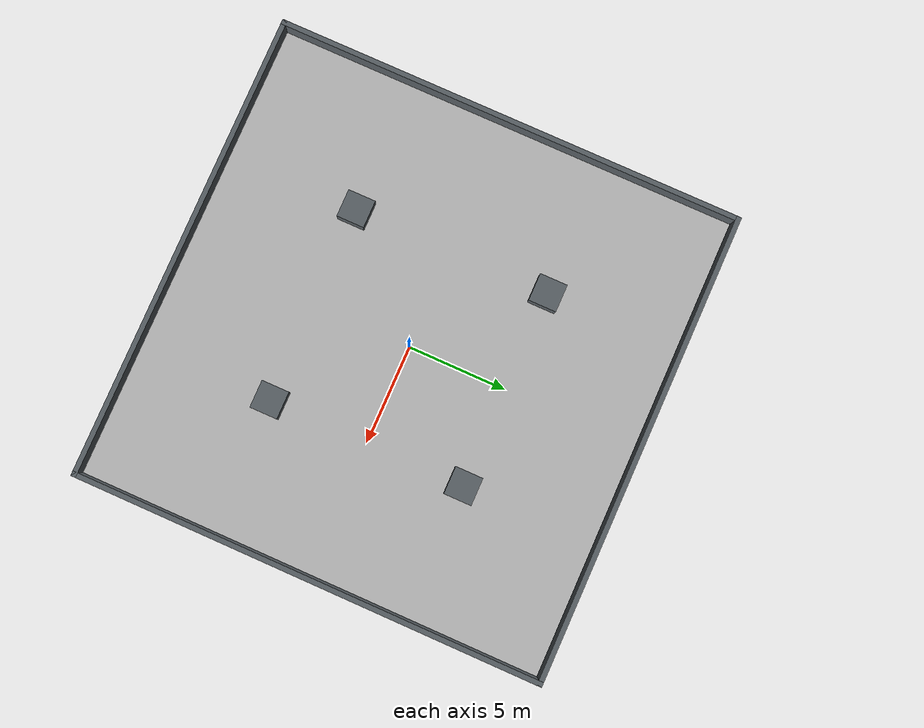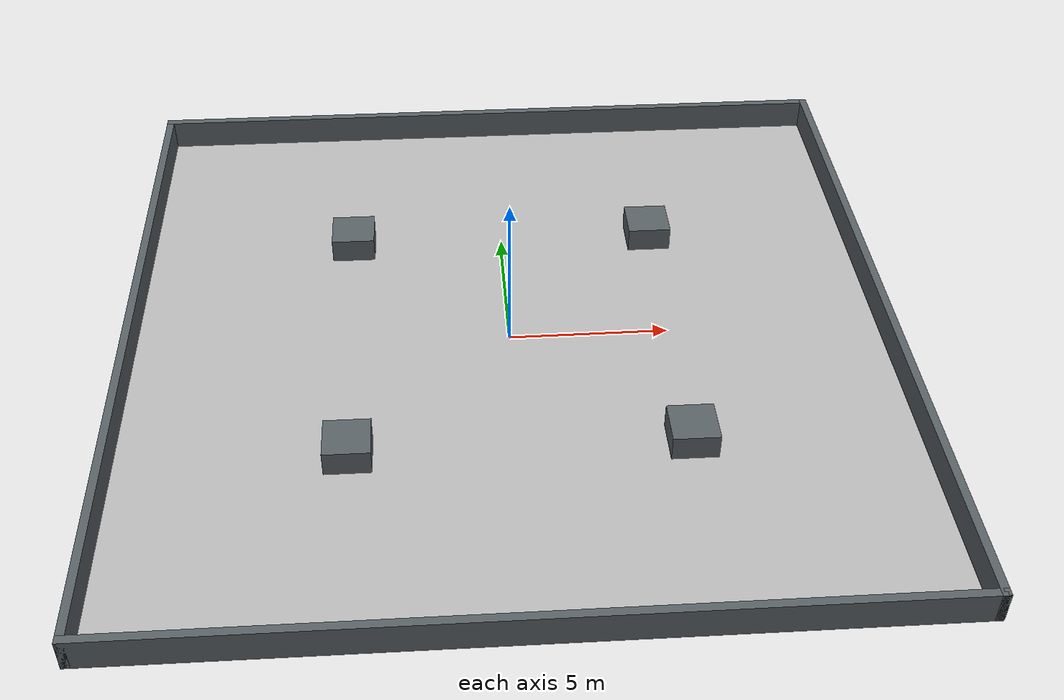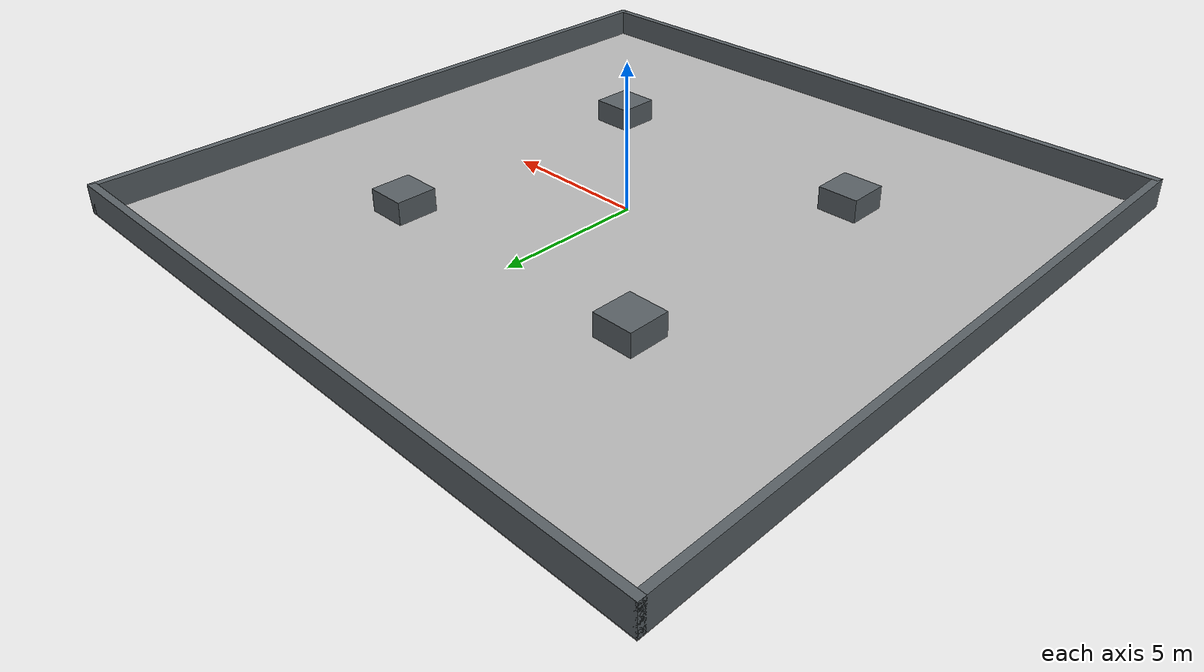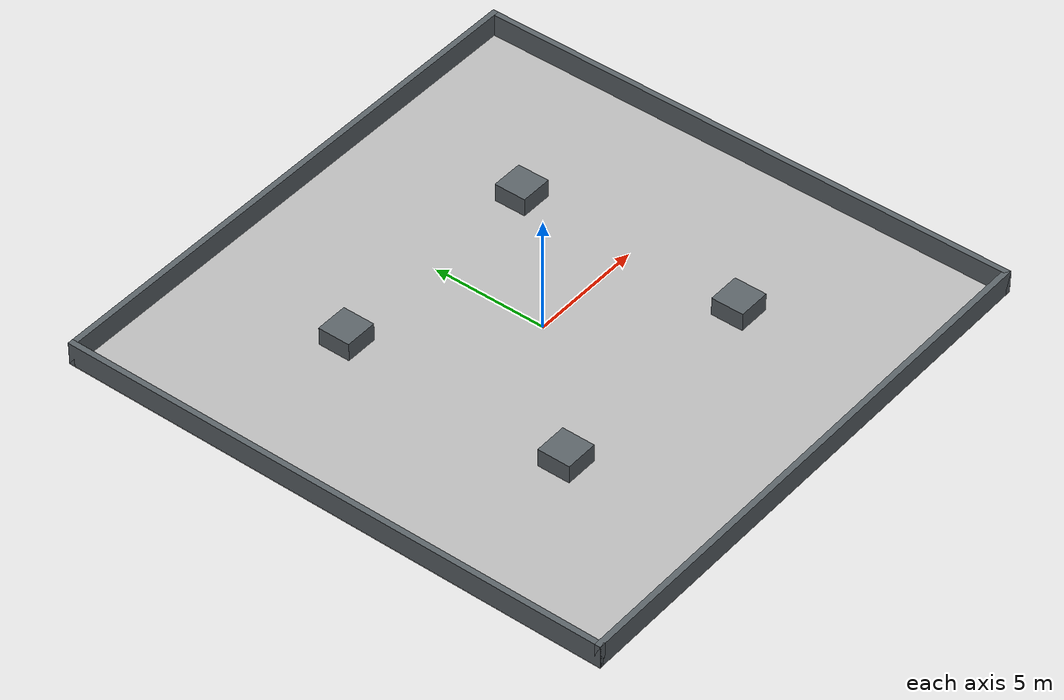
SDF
<?xml version="1.0"?>
<sdf version="1.6">
  <world name="default">
    <gravity>0 0 -9.8</gravity>
    <physics name="default_physics" type="ode">
      <max_step_size>0.002</max_step_size>
      <real_time_factor>1</real_time_factor>
      <real_time_update_rate>500</real_time_update_rate>
    </physics>
    <include><uri>model://sun</uri></include>
    <model name="ground_plane">
      <static>true</static>
      <link name="link">
        <collision name="collision">
          <geometry><box><size>24.000 24.000 0.02</size></box></geometry>
        </collision>
        <visual name="visual">
          <geometry><box><size>24.000 24.000 0.02</size></box></geometry>
          <material>
            <ambient>0.72 0.72 0.72 1</ambient>
            <diffuse>0.72 0.72 0.72 1</diffuse>
          </material>
        </visual>
      </link>
    </model>

    <model name="wall_north">
      <static>true</static>
      <pose>0.000 11.875 0.500 0 0 0</pose>
      <link name="link">
        <collision name="collision">
          <geometry><box><size>24.000 0.250 1.000</size></box></geometry>
        </collision>
        <visual name="visual">
          <geometry><box><size>24.000 0.250 1.000</size></box></geometry>
          <material>
            <ambient>0.35 0.38 0.40 1</ambient>
            <diffuse>0.35 0.38 0.40 1</diffuse>
          </material>
        </visual>
      </link>
    </model>

    <model name="wall_south">
      <static>true</static>
      <pose>0.000 -11.875 0.500 0 0 0</pose>
      <link name="link">
        <collision name="collision">
          <geometry><box><size>24.000 0.250 1.000</size></box></geometry>
        </collision>
        <visual name="visual">
          <geometry><box><size>24.000 0.250 1.000</size></box></geometry>
          <material>
            <ambient>0.35 0.38 0.40 1</ambient>
            <diffuse>0.35 0.38 0.40 1</diffuse>
          </material>
        </visual>
      </link>
    </model>

    <model name="wall_west">
      <static>true</static>
      <pose>-11.875 0.000 0.500 0 0 0</pose>
      <link name="link">
        <collision name="collision">
          <geometry><box><size>0.250 24.000 1.000</size></box></geometry>
        </collision>
        <visual name="visual">
          <geometry><box><size>0.250 24.000 1.000</size></box></geometry>
          <material>
            <ambient>0.35 0.38 0.40 1</ambient>
            <diffuse>0.35 0.38 0.40 1</diffuse>
          </material>
        </visual>
      </link>
    </model>

    <model name="wall_east">
      <static>true</static>
      <pose>11.875 0.000 0.500 0 0 0</pose>
      <link name="link">
        <collision name="collision">
          <geometry><box><size>0.250 24.000 1.000</size></box></geometry>
        </collision>
        <visual name="visual">
          <geometry><box><size>0.250 24.000 1.000</size></box></geometry>
          <material>
            <ambient>0.35 0.38 0.40 1</ambient>
            <diffuse>0.35 0.38 0.40 1</diffuse>
          </material>
        </visual>
      </link>
    </model>

    <model name="plaza_island_nw">
      <static>true</static>
      <pose>-5.000 5.000 0.400 0 0 0</pose>
      <link name="link">
        <collision name="collision">
          <geometry><box><size>1.400 1.400 0.800</size></box></geometry>
        </collision>
        <visual name="visual">
          <geometry><box><size>1.400 1.400 0.800</size></box></geometry>
          <material>
            <ambient>0.35 0.38 0.40 1</ambient>
            <diffuse>0.35 0.38 0.40 1</diffuse>
          </material>
        </visual>
      </link>
    </model>

    <model name="plaza_island_ne">
      <static>true</static>
      <pose>5.000 5.000 0.400 0 0 0</pose>
      <link name="link">
        <collision name="collision">
          <geometry><box><size>1.400 1.400 0.800</size></box></geometry>
        </collision>
        <visual name="visual">
          <geometry><box><size>1.400 1.400 0.800</size></box></geometry>
          <material>
            <ambient>0.35 0.38 0.40 1</ambient>
            <diffuse>0.35 0.38 0.40 1</diffuse>
          </material>
        </visual>
      </link>
    </model>

    <model name="plaza_island_sw">
      <static>true</static>
      <pose>-5.000 -5.000 0.400 0 0 0</pose>
      <link name="link">
        <collision name="collision">
          <geometry><box><size>1.400 1.400 0.800</size></box></geometry>
        </collision>
        <visual name="visual">
          <geometry><box><size>1.400 1.400 0.800</size></box></geometry>
          <material>
            <ambient>0.35 0.38 0.40 1</ambient>
            <diffuse>0.35 0.38 0.40 1</diffuse>
          </material>
        </visual>
      </link>
    </model>

    <model name="plaza_island_se">
      <static>true</static>
      <pose>5.000 -5.000 0.400 0 0 0</pose>
      <link name="link">
        <collision name="collision">
          <geometry><box><size>1.400 1.400 0.800</size></box></geometry>
        </collision>
        <visual name="visual">
          <geometry><box><size>1.400 1.400 0.800</size></box></geometry>
          <material>
            <ambient>0.35 0.38 0.40 1</ambient>
            <diffuse>0.35 0.38 0.40 1</diffuse>
          </material>
        </visual>
      </link>
    </model>
  </world>
</sdf>
